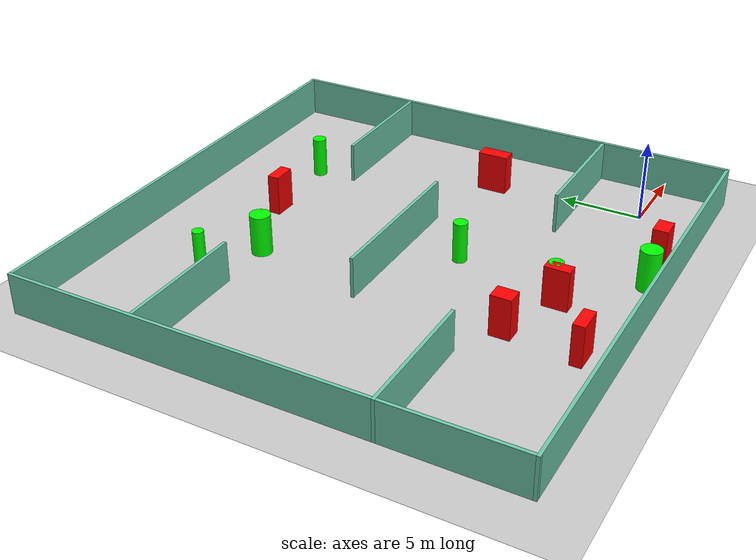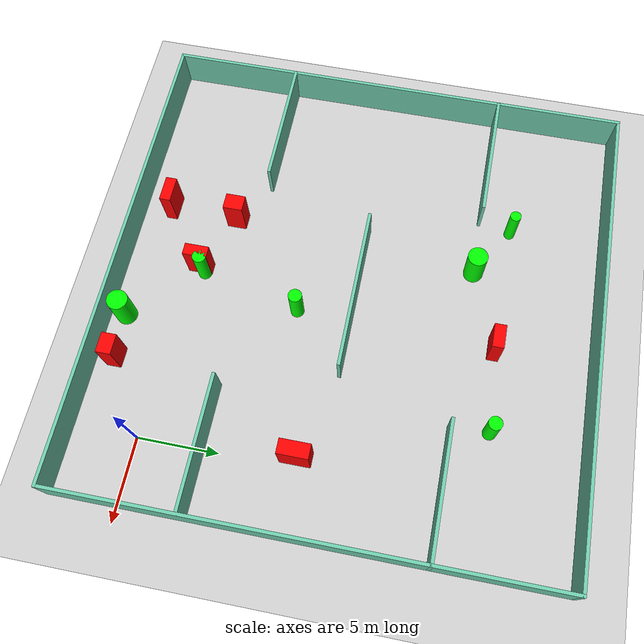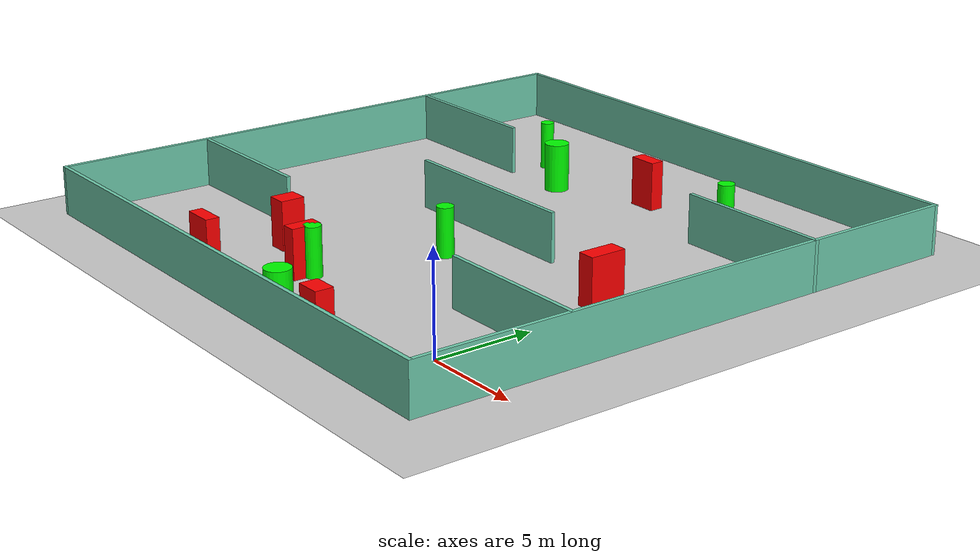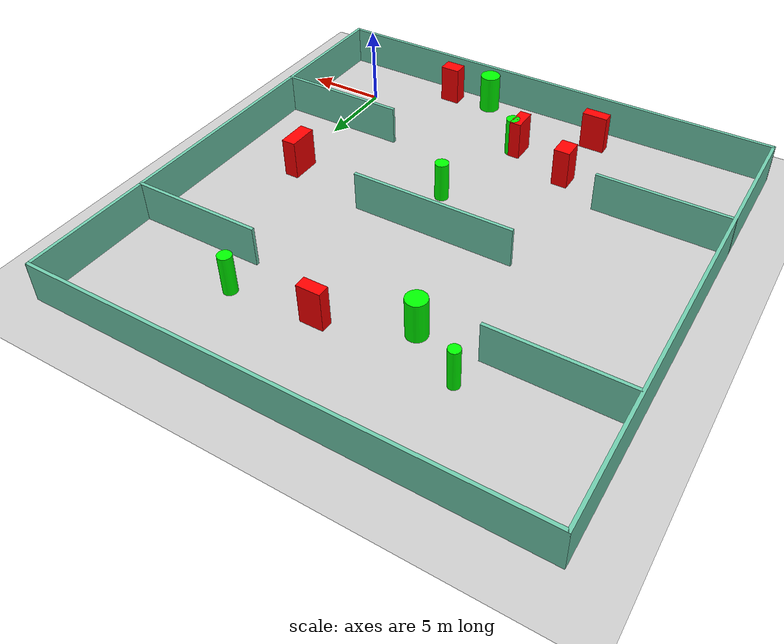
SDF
<sdf version="1.7">
 <world name="default">
  <light name="sun" type="directional">
   <pose>0 0 10 0 -0 0</pose>
   <diffuse>0.8 0.8 0.8 1</diffuse>
   <specular>0.2 0.2 0.2 1</specular>
   <attenuation>
    <range>1000</range>
    <constant>0.9</constant>
    <linear>0.01</linear>
    <quadratic>0.001</quadratic>
   </attenuation>
   <direction>-0.5 0.1 -0.9</direction>
   <spot><inner_angle>0</inner_angle><outer_angle>0</outer_angle><falloff>0</falloff></spot>
  </light>
  <model name="ground_plane">
   <static>1</static>
   <link name="link">
    <collision name="collision">
     <geometry><plane><normal>0 0 1</normal><size>100 100</size></plane></geometry>
     <surface>
      <contact><collide_bitmask>65535</collide_bitmask></contact>
      <friction><ode><mu>100</mu><mu2>50</mu2></ode></friction>
     </surface>
    </collision>
    <visual name="visual">
     <cast_shadows>0</cast_shadows>
     <geometry><plane><normal>0 0 1</normal><size>100 100</size></plane></geometry>
     <material>
      <script><uri>file://media/materials/scripts/gazebo.material</uri><name>Gazebo/Grey</name></script>
     </material>
    </visual>
   </link>
  </model>
  <gravity>0 0 -9.8</gravity>
  <magnetic_field>6e-06 2.3e-05 -4.2e-05</magnetic_field>
  <atmosphere type="adiabatic"/>
  <physics type="ode">
   <max_step_size>0.001</max_step_size>
   <real_time_factor>1</real_time_factor>
   <real_time_update_rate>1000</real_time_update_rate>
  </physics>
  <scene><ambient>0.4 0.4 0.4 1</ambient><background>0.7 0.7 0.7 1</background><shadows>1</shadows></scene>
  <spherical_coordinates>
   <surface_model>EARTH_WGS84</surface_model>
   <latitude_deg>0</latitude_deg>
   <longitude_deg>0</longitude_deg>
   <elevation>0</elevation>
   <heading_deg>0</heading_deg>
  </spherical_coordinates>
  <model name="my_base_walls">
   <link name="Wall_10">
    <collision name="Wall_10_Collision">
     <geometry><box><size>8.2 0.2 2.5</size></box></geometry>
     <pose>0 0 1.25 0 -0 0</pose>
    </collision>
    <visual name="Wall_10_Visual">
     <pose>0 0 1.25 0 -0 0</pose>
     <geometry><box><size>8.2 0.2 2.5</size></box></geometry>
     <material>
      <script><uri>file://media/materials/scripts/gazebo.material</uri><name>Gazebo/Grey</name></script>
      <ambient>0.435294 0.796078 0.67451 1</ambient>
     </material>
     <meta><layer>0</layer></meta>
    </visual>
    <pose>-11 -7 0 0 -0 0</pose>
   </link>
   <link name="Wall_12">
    <collision name="Wall_12_Collision">
     <geometry><box><size>8.2 0.2 2.5</size></box></geometry>
     <pose>0 0 1.25 0 -0 0</pose>
    </collision>
    <visual name="Wall_12_Visual">
     <pose>0 0 1.25 0 -0 0</pose>
     <geometry><box><size>8.2 0.2 2.5</size></box></geometry>
     <material>
      <script><uri>file://media/materials/scripts/gazebo.material</uri><name>Gazebo/Grey</name></script>
      <ambient>0.435294 0.796078 0.67451 1</ambient>
     </material>
     <meta><layer>0</layer></meta>
    </visual>
    <pose>-11 7 0 0 -0 0</pose>
   </link>
   <link name="Wall_14">
    <collision name="Wall_14_Collision">
     <geometry><box><size>8.2 0.2 2.5</size></box></geometry>
     <pose>0 0 1.25 0 -0 0</pose>
    </collision>
    <visual name="Wall_14_Visual">
     <pose>0 0 1.25 0 -0 0</pose>
     <geometry><box><size>8.2 0.2 2.5</size></box></geometry>
     <material>
      <script><uri>file://media/materials/scripts/gazebo.material</uri><name>Gazebo/Grey</name></script>
      <ambient>0.435294 0.796078 0.67451 1</ambient>
     </material>
     <meta><layer>0</layer></meta>
    </visual>
    <pose>11 7 0 0 -0 3.14159</pose>
   </link>
   <link name="Wall_16">
    <collision name="Wall_16_Collision">
     <geometry><box><size>10.2 0.2 2.5</size></box></geometry>
     <pose>0 0 1.25 0 -0 0</pose>
    </collision>
    <visual name="Wall_16_Visual">
     <pose>0 0 1.25 0 -0 0</pose>
     <geometry><box><size>10.2 0.2 2.5</size></box></geometry>
     <material>
      <script><uri>file://media/materials/scripts/gazebo.material</uri><name>Gazebo/Grey</name></script>
      <ambient>0.435294 0.796078 0.67451 1</ambient>
     </material>
     <meta><layer>0</layer></meta>
    </visual>
    <pose>0 0 0 0 -0 3.14159</pose>
   </link>
   <link name="Wall_2">
    <collision name="Wall_2_Collision">
     <geometry><box><size>30.2 0.2 2.5</size></box></geometry>
     <pose>0 0 1.25 0 -0 0</pose>
    </collision>
    <visual name="Wall_2_Visual">
     <pose>0 0 1.25 0 -0 0</pose>
     <geometry><box><size>30.2 0.2 2.5</size></box></geometry>
     <material>
      <script><uri>file://media/materials/scripts/gazebo.material</uri><name>Gazebo/Grey</name></script>
      <ambient>0.435294 0.796078 0.67451 1</ambient>
     </material>
     <meta><layer>0</layer></meta>
    </visual>
    <pose>0 -15 0 0 -0 3.14159</pose>
   </link>
   <link name="Wall_3">
    <collision name="Wall_3_Collision">
     <geometry><box><size>30.2 0.2 2.5</size></box></geometry>
     <pose>0 0 1.25 0 -0 0</pose>
    </collision>
    <visual name="Wall_3_Visual">
     <pose>0 0 1.25 0 -0 0</pose>
     <geometry><box><size>30.2 0.2 2.5</size></box></geometry>
     <material>
      <script><uri>file://media/materials/scripts/gazebo.material</uri><name>Gazebo/Grey</name></script>
      <ambient>0.435294 0.796078 0.67451 1</ambient>
     </material>
     <meta><layer>0</layer></meta>
    </visual>
    <pose>-15 0 0 0 -0 1.5708</pose>
   </link>
   <link name="Wall_4">
    <collision name="Wall_4_Collision">
     <geometry><box><size>30.2 0.2 2.5</size></box></geometry>
     <pose>0 0 1.25 0 -0 0</pose>
    </collision>
    <visual name="Wall_4_Visual">
     <pose>0 0 1.25 0 -0 0</pose>
     <geometry><box><size>30.2 0.2 2.5</size></box></geometry>
     <material>
      <script><uri>file://media/materials/scripts/gazebo.material</uri><name>Gazebo/Grey</name></script>
      <ambient>0.435294 0.796078 0.67451 1</ambient>
     </material>
     <meta><layer>0</layer></meta>
    </visual>
    <pose>0 15 0 0 -0 0</pose>
   </link>
   <link name="Wall_6">
    <collision name="Wall_6_Collision">
     <geometry><box><size>30.2 0.2 2.5</size></box></geometry>
     <pose>0 0 1.25 0 -0 0</pose>
    </collision>
    <visual name="Wall_6_Visual">
     <pose>0 0 1.25 0 -0 0</pose>
     <geometry><box><size>30.2 0.2 2.5</size></box></geometry>
     <material>
      <script><uri>file://media/materials/scripts/gazebo.material</uri><name>Gazebo/Grey</name></script>
      <ambient>0.435294 0.796078 0.67451 1</ambient>
     </material>
     <meta><layer>0</layer></meta>
    </visual>
    <pose>15 0 0 0 -0 1.5708</pose>
   </link>
   <link name="Wall_8">
    <collision name="Wall_8_Collision">
     <geometry><box><size>8.2 0.2 2.5</size></box></geometry>
     <pose>0 0 1.25 0 -0 0</pose>
    </collision>
    <visual name="Wall_8_Visual">
     <pose>0 0 1.25 0 -0 0</pose>
     <geometry><box><size>8.2 0.2 2.5</size></box></geometry>
     <material>
      <script><uri>file://media/materials/scripts/gazebo.material</uri><name>Gazebo/Grey</name></script>
      <ambient>0.435294 0.796078 0.67451 1</ambient>
     </material>
     <meta><layer>0</layer></meta>
    </visual>
    <pose>11 -7 0 0 -0 3.14159</pose>
   </link>
   <static>1</static>
   <pose>-11 11 0 0 -0 0</pose>
  </model>
  <model name="cylinder1">
   <static>1</static>
   <link name="link">
    <inertial>
     <mass>1</mass>
     <inertia><ixx>0.5</ixx><ixy>0</ixy><ixz>0</ixz><iyy>0.5</iyy><iyz>0</iyz><izz>1</izz></inertia>
    </inertial>
    <collision name="collision">
     <geometry><cylinder><radius>0.6454685008209592</radius><length>2.5</length></cylinder></geometry>
    </collision>
    <visual name="visual">
     <geometry><cylinder><radius>0.6454685008209592</radius><length>2.5</length></cylinder></geometry>
     <material>
      <ambient>0 1 0 1</ambient>
      <diffuse>0 1 0 1</diffuse>
      <specular>0.1 0.1 0.1 1</specular>
      <emissive>0 0 0 0</emissive>
     </material>
    </visual>
   </link>
   <pose>-7.425828124962569 -2.907742886532871 1.25 0 0 0</pose>
  </model>
  <model name="cylinder2">
   <static>1</static>
   <link name="link">
    <inertial>
     <mass>1</mass>
     <inertia><ixx>0.5</ixx><ixy>0</ixy><ixz>0</ixz><iyy>0.5</iyy><iyz>0</iyz><izz>1</izz></inertia>
    </inertial>
    <collision name="collision">
     <geometry><cylinder><radius>0.42384233305342245</radius><length>2.5</length></cylinder></geometry>
    </collision>
    <visual name="visual">
     <geometry><cylinder><radius>0.42384233305342245</radius><length>2.5</length></cylinder></geometry>
     <material>
      <ambient>0 1 0 1</ambient>
      <diffuse>0 1 0 1</diffuse>
      <specular>0.1 0.1 0.1 1</specular>
      <emissive>0 0 0 0</emissive>
     </material>
    </visual>
   </link>
   <pose>-11.158321047603318 1.1665332683258711 1.25 0 0 0</pose>
  </model>
  <model name="cylinder3">
   <static>1</static>
   <link name="link">
    <inertial>
     <mass>1</mass>
     <inertia><ixx>0.5</ixx><ixy>0</ixy><ixz>0</ixz><iyy>0.5</iyy><iyz>0</iyz><izz>1</izz></inertia>
    </inertial>
    <collision name="collision">
     <geometry><cylinder><radius>0.4254721213118283</radius><length>2.5</length></cylinder></geometry>
    </collision>
    <visual name="visual">
     <geometry><cylinder><radius>0.4254721213118283</radius><length>2.5</length></cylinder></geometry>
     <material>
      <ambient>0 1 0 1</ambient>
      <diffuse>0 1 0 1</diffuse>
      <specular>0.1 0.1 0.1 1</specular>
      <emissive>0 0 0 0</emissive>
     </material>
    </visual>
   </link>
   <pose>-9.70429754550442 7.565023064556524 1.25 0 0 0</pose>
  </model>
  <model name="cylinder4">
   <static>1</static>
   <link name="link">
    <inertial>
     <mass>1</mass>
     <inertia><ixx>0.5</ixx><ixy>0</ixy><ixz>0</ixz><iyy>0.5</iyy><iyz>0</iyz><izz>1</izz></inertia>
    </inertial>
    <collision name="collision">
     <geometry><cylinder><radius>0.3437243194026556</radius><length>2.5</length></cylinder></geometry>
    </collision>
    <visual name="visual">
     <geometry><cylinder><radius>0.3437243194026556</radius><length>2.5</length></cylinder></geometry>
     <material>
      <ambient>0 1 0 1</ambient>
      <diffuse>0 1 0 1</diffuse>
      <specular>0.1 0.1 0.1 1</specular>
      <emissive>0 0 0 0</emissive>
     </material>
    </visual>
   </link>
   <pose>-17.62758202744825 20.072582551652555 1.25 0 0 0</pose>
  </model>
  <model name="cylinder5">
   <static>1</static>
   <link name="link">
    <inertial>
     <mass>1</mass>
     <inertia><ixx>0.5</ixx><ixy>0</ixy><ixz>0</ixz><iyy>0.5</iyy><iyz>0</iyz><izz>1</izz></inertia>
    </inertial>
    <collision name="collision">
     <geometry><cylinder><radius>0.41894647645982674</radius><length>2.5</length></cylinder></geometry>
    </collision>
    <visual name="visual">
     <geometry><cylinder><radius>0.41894647645982674</radius><length>2.5</length></cylinder></geometry>
     <material>
      <ambient>0 1 0 1</ambient>
      <diffuse>0 1 0 1</diffuse>
      <specular>0.1 0.1 0.1 1</specular>
      <emissive>0 0 0 0</emissive>
     </material>
    </visual>
   </link>
   <pose>-4.189843808292906 20.40193538471933 1.25 0 0 0</pose>
  </model>
  <model name="cylinder6">
   <static>1</static>
   <link name="link">
    <inertial>
     <mass>1</mass>
     <inertia><ixx>0.5</ixx><ixy>0</ixy><ixz>0</ixz><iyy>0.5</iyy><iyz>0</iyz><izz>1</izz></inertia>
    </inertial>
    <collision name="collision">
     <geometry><cylinder><radius>0.625464332795208</radius><length>2.5</length></cylinder></geometry>
    </collision>
    <visual name="visual">
     <geometry><cylinder><radius>0.625464332795208</radius><length>2.5</length></cylinder></geometry>
     <material>
      <ambient>0 1 0 1</ambient>
      <diffuse>0 1 0 1</diffuse>
      <specular>0.1 0.1 0.1 1</specular>
      <emissive>0 0 0 0</emissive>
     </material>
    </visual>
   </link>
   <pose>-14.381472323072703 18.09858265298546 1.25 0 0 0</pose>
  </model>
  <model name="box1">
   <static>1</static>
   <link name="link">
    <inertial>
     <mass>1</mass>
     <inertia><ixx>0.083</ixx><ixy>0</ixy><ixz>0</ixz><iyy>0.083</iyy><iyz>0</iyz><izz>0.083</izz></inertia>
    </inertial>
    <collision name="collision">
     <geometry><box><size>1.606449772859177 0.6970827183374391 2.5</size></box></geometry>
    </collision>
    <visual name="visual">
     <geometry><box><size>1.606449772859177 0.6970827183374391 2.5</size></box></geometry>
     <material>
      <ambient>1 0 0 1</ambient>
      <diffuse>1 0 0 1</diffuse>
      <specular>0.1 0.1 0.1 1</specular>
      <emissive>0 0 0 0</emissive>
     </material>
    </visual>
    <sensor name="my_contact" type="contact">
     <contact><collision>box_collision</collision><topic>__default_topic__</topic></contact>
    </sensor>
   </link>
   <pose>-15.440917649799918 -2.0389330275808555 1.25 0 0 0</pose>
  </model>
  <model name="box2">
   <static>1</static>
   <link name="link">
    <inertial>
     <mass>1</mass>
     <inertia><ixx>0.083</ixx><ixy>0</ixy><ixz>0</ixz><iyy>0.083</iyy><iyz>0</iyz><izz>0.083</izz></inertia>
    </inertial>
    <collision name="collision">
     <geometry><box><size>0.7355694847886106 1.5143081194721788 2.5</size></box></geometry>
    </collision>
    <visual name="visual">
     <geometry><box><size>0.7355694847886106 1.5143081194721788 2.5</size></box></geometry>
     <material>
      <ambient>1 0 0 1</ambient>
      <diffuse>1 0 0 1</diffuse>
      <specular>0.1 0.1 0.1 1</specular>
      <emissive>0 0 0 0</emissive>
     </material>
    </visual>
    <sensor name="my_contact" type="contact">
     <contact><collision>box_collision</collision><topic>__default_topic__</topic></contact>
    </sensor>
   </link>
   <pose>-11.515993599057763 0.8587848396844175 1.25 0 0 0</pose>
  </model>
  <model name="box3">
   <static>1</static>
   <link name="link">
    <inertial>
     <mass>1</mass>
     <inertia><ixx>0.083</ixx><ixy>0</ixy><ixz>0</ixz><iyy>0.083</iyy><iyz>0</iyz><izz>0.083</izz></inertia>
    </inertial>
    <collision name="collision">
     <geometry><box><size>1.4727981592585015 0.7208873934987061 2.5</size></box></geometry>
    </collision>
    <visual name="visual">
     <geometry><box><size>1.4727981592585015 0.7208873934987061 2.5</size></box></geometry>
     <material>
      <ambient>1 0 0 1</ambient>
      <diffuse>1 0 0 1</diffuse>
      <specular>0.1 0.1 0.1 1</specular>
      <emissive>0 0 0 0</emissive>
     </material>
    </visual>
    <sensor name="my_contact" type="contact">
     <contact><collision>box_collision</collision><topic>__default_topic__</topic></contact>
    </sensor>
   </link>
   <pose>-9.46578617616671 20.009452709394346 1.25 0 0 0</pose>
  </model>
  <model name="box4">
   <static>1</static>
   <link name="link">
    <inertial>
     <mass>1</mass>
     <inertia><ixx>0.083</ixx><ixy>0</ixy><ixz>0</ixz><iyy>0.083</iyy><iyz>0</iyz><izz>0.083</izz></inertia>
    </inertial>
    <collision name="collision">
     <geometry><box><size>1.2578874252990206 0.9177846656319986 2.5</size></box></geometry>
    </collision>
    <visual name="visual">
     <geometry><box><size>1.2578874252990206 0.9177846656319986 2.5</size></box></geometry>
     <material>
      <ambient>1 0 0 1</ambient>
      <diffuse>1 0 0 1</diffuse>
      <specular>0.1 0.1 0.1 1</specular>
      <emissive>0 0 0 0</emissive>
     </material>
    </visual>
    <sensor name="my_contact" type="contact">
     <contact><collision>box_collision</collision><topic>__default_topic__</topic></contact>
    </sensor>
   </link>
   <pose>-4.643572206470832 -2.6975390824847345 1.25 0 0 0</pose>
  </model>
  <model name="box5">
   <static>1</static>
   <link name="link">
    <inertial>
     <mass>1</mass>
     <inertia><ixx>0.083</ixx><ixy>0</ixy><ixz>0</ixz><iyy>0.083</iyy><iyz>0</iyz><izz>0.083</izz></inertia>
    </inertial>
    <collision name="collision">
     <geometry><box><size>1.0113723631183182 1.2348407840268527 2.5</size></box></geometry>
    </collision>
    <visual name="visual">
     <geometry><box><size>1.0113723631183182 1.2348407840268527 2.5</size></box></geometry>
     <material>
      <ambient>1 0 0 1</ambient>
      <diffuse>1 0 0 1</diffuse>
      <specular>0.1 0.1 0.1 1</specular>
      <emissive>0 0 0 0</emissive>
     </material>
    </visual>
    <sensor name="my_contact" type="contact">
     <contact><collision>box_collision</collision><topic>__default_topic__</topic></contact>
    </sensor>
   </link>
   <pose>-15.288312757244025 2.355953152603713 1.25 0 0 0</pose>
  </model>
  <model name="box6">
   <static>1</static>
   <link name="link">
    <inertial>
     <mass>1</mass>
     <inertia><ixx>0.083</ixx><ixy>0</ixy><ixz>0</ixz><iyy>0.083</iyy><iyz>0</iyz><izz>0.083</izz></inertia>
    </inertial>
    <collision name="collision">
     <geometry><box><size>0.8948836302305883 1.8758385110219393 2.5</size></box></geometry>
    </collision>
    <visual name="visual">
     <geometry><box><size>0.8948836302305883 1.8758385110219393 2.5</size></box></geometry>
     <material>
      <ambient>1 0 0 1</ambient>
      <diffuse>1 0 0 1</diffuse>
      <specular>0.1 0.1 0.1 1</specular>
      <emissive>0 0 0 0</emissive>
     </material>
    </visual>
    <sensor name="my_contact" type="contact">
     <contact><collision>box_collision</collision><topic>__default_topic__</topic></contact>
    </sensor>
   </link>
   <pose>-0.6421752398081182 9.507256398884442 1.25 0 0 0</pose>
  </model>
 </world>
</sdf>
